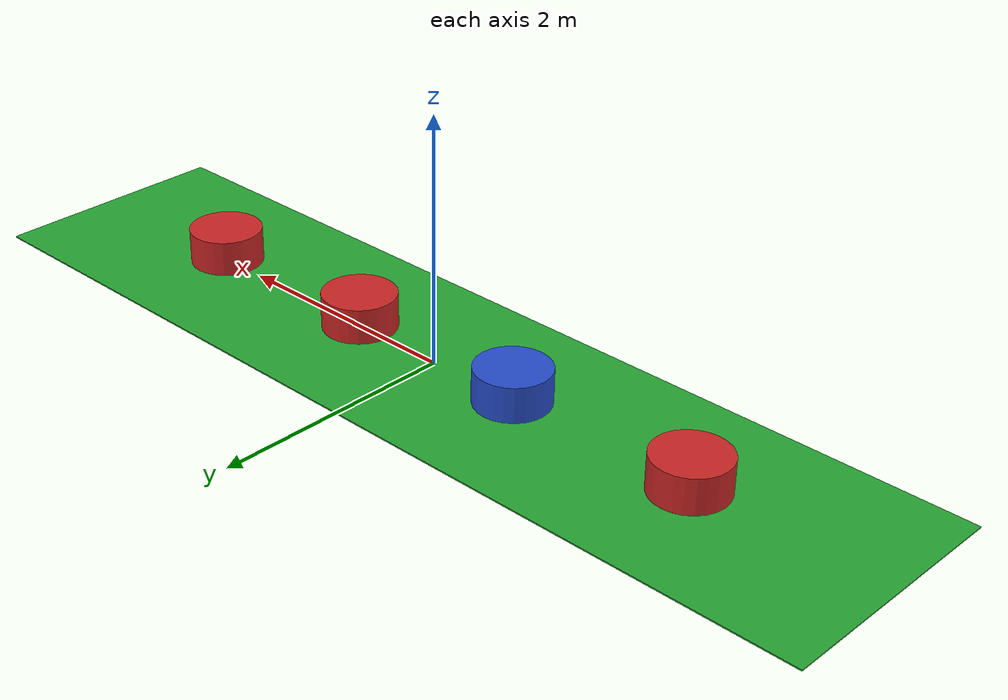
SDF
<?xml version="1.0" ?>

<sdf version="1.5">
  <model name="target_acquistion_area">
    <static>true</static>
    <link name="link">

      <visual name="target_acquistion_area">
        <cast_shadows>false</cast_shadows>
        <pose>0 0 .005 0 0 0</pose>
        <geometry>
          <box>
            <size>8 2 .01</size>
          </box>
        </geometry>
        <material>
          <script>
            <uri>file://materials/scripts/colors.material</uri>
            <name>SAUVC/Green</name>
          </script>
        </material>
      </visual>
    </link>

    <include>
      <name>red_drum0</name>
      <uri>model://red_drum</uri>
      <pose>-2.4 0 0 0 0 0</pose>
    </include>

    <include>
      <name>blue_drum0</name>
      <uri>model://blue_drum</uri>
      <pose>-0.8 0 0 0 0 0</pose>
    </include>

    <include>
      <name>red_drum1</name>
      <uri>model://red_drum</uri>
      <pose>0.8 0 0 0 0 0</pose>
    </include>

    <include>
      <name>red_drum2</name>
      <uri>model://red_drum</uri>
      <pose>2.4 0 0 0 0 0</pose>
    </include>

  </model>
</sdf>

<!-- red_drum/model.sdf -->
<sdf version="1.5">
  <model name="red_drum">
    <static>true</static>
    <link name="link">

      <collision name="drum">
        <pose>0 0 0.15 0 0 0</pose>
        <geometry>
          <cylinder>
            <radius>0.3</radius>
            <length>0.3</length>
          </cylinder>
        </geometry>
      </collision>

      <visual name="drum">
        <cast_shadows>false</cast_shadows>
        <pose>0 0 0.15 0 0 0</pose>
        <geometry>
          <cylinder>
            <radius>0.3</radius>
            <length>0.3</length>
          </cylinder>
        </geometry>
        <material>
          <script>
            <uri>file://materials/scripts/colors.material</uri>
            <name>SAUVC/Red</name>
          </script>
        </material>
      </visual>

    </link>
  </model>
</sdf>

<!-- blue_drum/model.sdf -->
<sdf version="1.5">
  <model name="blue_drum">
    <static>true</static>
    <link name="link">

      <collision name="drum">
        <pose>0 0 0.15 0 0 0</pose>
        <geometry>
          <cylinder>
            <radius>0.3</radius>
            <length>0.3</length>
          </cylinder>
        </geometry>
      </collision>

      <visual name="drum">
        <cast_shadows>false</cast_shadows>
        <pose>0 0 0.15 0 0 0</pose>
        <geometry>
          <cylinder>
            <radius>0.3</radius>
            <length>0.3</length>
          </cylinder>
        </geometry>
        <material>
          <script>
            <uri>file://materials/scripts/colors.material</uri>
            <name>SAUVC/Blue</name>
          </script>
        </material>
      </visual>

    </link>
  </model>
</sdf>
